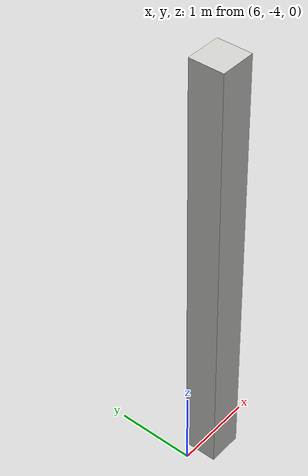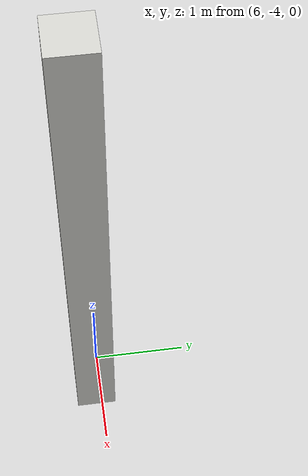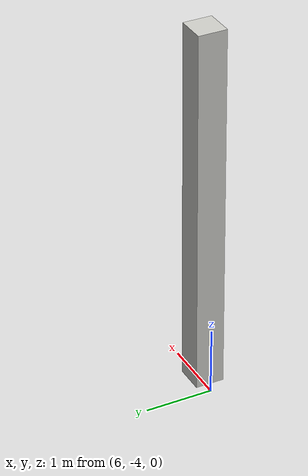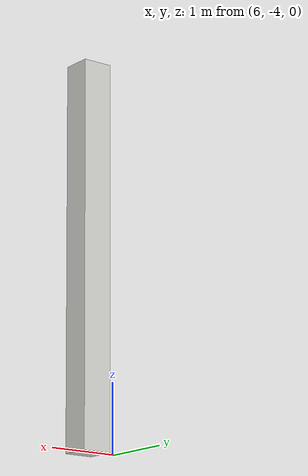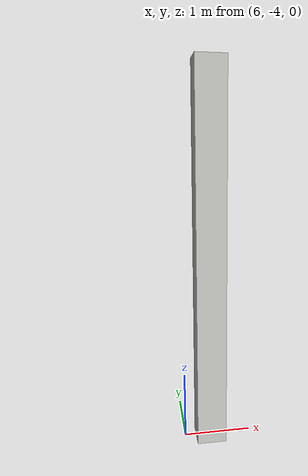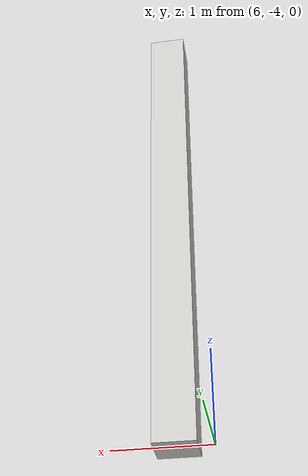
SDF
<?xml version='1.0'?>
<sdf version='1.6'>
  <model name='left_back_wall'>
    <pose frame=''>6.373 -4.063 0 0 -0 0</pose>
    <link name='Wall_7'>
      <collision name='Wall_7_Collision'>
        <geometry>
          <box>
            <size>0.43 0.42 5.5</size>
          </box>
        </geometry>
        <pose frame=''>0 0 2.75 0 -0 0</pose>
      </collision>
      <visual name='Wall_7_Visual'>
        <pose frame=''>0 0 2.75 0 -0 0</pose>
        <geometry>
          <box>
            <size>0.43 0.42 5.5</size>
          </box>
        </geometry>
        <material>
          <script>
            <uri>file://media/materials/scripts/gazebo.material</uri>
            <name>Gazebo/CeilingTiled</name>
          </script>
          <ambient>1 1 1 1</ambient>
        </material>
      </visual>
      <pose frame=''>0 0 0 0 -0 3.14159</pose>
    </link>
    <static>1</static>
  </model>
</sdf>
